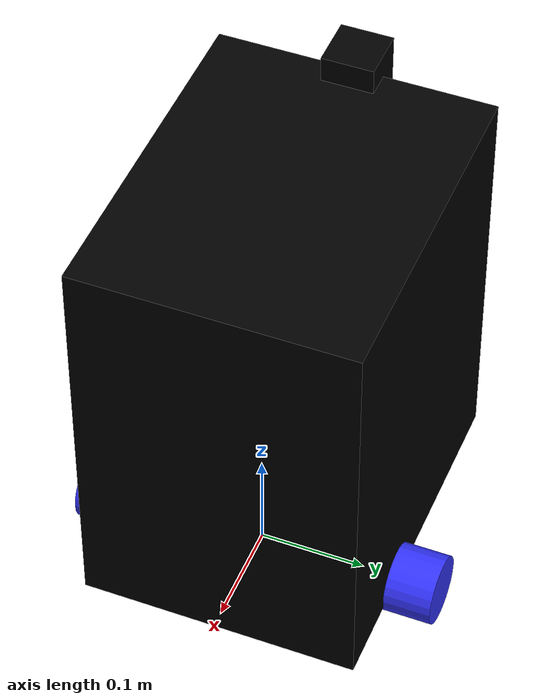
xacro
<?xml version="1.0" ?>
<robot name='robot' xmlns:xacro="http://ros.org/wiki/xacro">

    <xacro:include filename="$(find robot_bringup)/urdf/gazebo.urdf.xacro" />
    <!--xacro:include filename="$(find robot_description)/urdf/lidar.urdf.xacro" /-->
    <!--xacro:include filename="$(find robot_description)/urdf/depth.urdf.xacro" /-->

    <xacro:property name="chassis_length" value="0.335"/>
    <xacro:property name="chassis_width" value="0.265"/>
    <xacro:property name="chassis_height" value="0.138"/>
    <xacro:property name="chassis_height" value="0.4"/>
    <xacro:property name="wheel_radius" value="0.033"/>
    <xacro:property name="wheel_thickness" value="0.058"/>
    <xacro:property name="wheel_mass" value="0.05"/>
    <xacro:property name="wheel_offset_x" value="0.226"/>
    <xacro:property name="wheel_offset_x" value="0.226"/>
    <xacro:property name="wheel_offset_y" value="0.1485"/>
    <xacro:property name="wheel_offset_z" value="0.01"/>
    <xacro:property name="caster_wheel_radius" value="0.01"/>
    <xacro:property name="caster_wheel_mass" value="0.01"/>
    <xacro:property name="caster_wheel_offset_x" value="0.075"/>
    <xacro:property name="caster_wheel_offset_z" value="${wheel_offset_z - wheel_radius + caster_wheel_radius}"/>
    <xacro:property name="mass" value="1.0"/>
    <xacro:property name="cube_size" value="0.05"/>

    <material name="white">
        <color rgba="1 1 1 1" />
    </material>

    <material name="orange">
        <color rgba="1 0.3 0.1 1"/>
    </material>

    <material name="blue">
        <color rgba="0.2 0.2 1 1"/>
    </material>

    <material name="black">
        <color rgba="0 0 0 1"/>
    </material>

    <material name="red">
        <color rgba="1 0 0 1"/>
    </material>

    <material name="purple">
        <color rgba="0.5 0 0.5 1"/>
    </material>

    <!-- Основа робота -->
    <link name="base_link">
    </link>

    <link name="base_footprint">
    </link>

    <joint name="base_footprint_joint" type="fixed">
        <parent link="base_link"/>
        <child link="base_footprint"/>
        <origin xyz="0 0 -0.138" rpy="0 0 0"/>
    </joint>

    <joint name="chassis_joint" type="fixed">
        <parent link="base_link"/>
        <child link="chassis"/>
        <origin xyz="${-wheel_offset_x} 0 ${-wheel_offset_z}"/>
    </joint>

    <link name='chassis'>
        <inertial>
            <origin xyz="${chassis_length/2} 0 ${chassis_height/2}" rpy="0 0 0"/>
            <mass value="${mass}" />
            <inertia ixx="${(1/12) * mass * (chassis_width*chassis_width+chassis_height*chassis_height)}" ixy="0.0" ixz="0.0"
                     iyy="${(1/12) * mass * (chassis_length*chassis_length+chassis_height*chassis_height)}" iyz="0.0"
                     izz="${(1/12) * mass * (chassis_length*chassis_length+chassis_width*chassis_width)}" />
        </inertial>
        <visual>
            <origin xyz="${chassis_length/2} 0 ${chassis_height/2}"/>
            <geometry>
                <box size="${chassis_length} ${chassis_width} ${chassis_height}"/>
            </geometry>
            <material name="black"/>
        </visual>
        <collision>
            <origin xyz="${chassis_length/2} 0 ${chassis_height/2}"/>
            <geometry>
                <box size="${chassis_length} ${chassis_width} ${chassis_height}"/>
            </geometry>
        </collision>
    </link>

    <gazebo reference="chassis">
        <material>Gazebo/Black</material>
    </gazebo>

    <link name="top_cube">
        <visual>
            <!-- Высота установлена так, чтобы кубик находился на шасси -->
            <origin xyz="0 0 ${chassis_height / 2}"/>
            <geometry>
                <box size="${cube_size} ${cube_size} ${cube_size}"/>
            </geometry>
            <material name="black"/>
        </visual>
        <collision>
            <origin xyz="0 0 ${chassis_height / 2}"/>
            <geometry>
                <box size="${cube_size} ${cube_size} ${cube_size}"/>
            </geometry>
        </collision>
        <inertial>
            <origin xyz="0 0 ${chassis_height / 2}"/>
            <mass value="0.1"/>
            <inertia ixx="0.0001" ixy="0" ixz="0" iyy="0.0001" iyz="0" izz="0.0001"/>
        </inertial>
    </link>

    <joint name="top_cube_joint" type="fixed">
        <parent link="chassis"/>
        <child link="top_cube"/>
        <origin xyz="0 0 ${chassis_height / 2}"/>
    </joint>

    <!-- Левое колесо -->
    <joint name="left_wheel_joint" type="continuous">
        <parent link="base_link"/>
        <child link="left_wheel"/>
        <origin xyz="0 ${wheel_offset_y} 0" rpy="-${pi/2} 0 0" />
        <axis xyz="0 0 1"/>
    </joint>

    <link name="left_wheel">
        <visual>
            <geometry>
                <cylinder radius="${wheel_radius}" length="${wheel_thickness}"/>
            </geometry>
            <material name="blue"/>
        </visual>
        <collision>
            <geometry>
                <sphere radius="${wheel_radius}"/>
            </geometry>
        </collision>
        <inertial>
            <origin xyz="0 0 0" rpy="0 0 0"/>
            <mass value="${wheel_mass}" />
            <inertia ixx="${(1/12) * wheel_mass * (3*wheel_radius*wheel_radius + wheel_thickness*wheel_thickness)}" ixy="0.0" ixz="0.0"
                     iyy="${(1/12) * wheel_mass * (3*wheel_radius*wheel_radius + wheel_thickness*wheel_thickness)}" iyz="0.0"
                     izz="${(1/2) * wheel_mass * (wheel_radius*wheel_radius)}" />
        </inertial>
    </link>

    <gazebo reference="left_wheel">
        <material>Gazebo/Blue</material>
    </gazebo>

    <!-- Правое колесо -->
    <joint name="right_wheel_joint" type="continuous">
        <parent link="base_link"/>
        <child link="right_wheel"/>
        <origin xyz="0 ${-wheel_offset_y} 0" rpy="${pi/2} 0 0" />
        <axis xyz="0 0 -1"/>
    </joint>

    <link name="right_wheel">
        <visual>
            <geometry>
                <cylinder radius="${wheel_radius}" length="${wheel_thickness}"/>
            </geometry>
            <material name="blue"/>
        </visual>
        <collision>
            <geometry>
                <sphere radius="${wheel_radius}"/>
            </geometry>
        </collision>
        <inertial>
            <origin xyz="0 0 0" rpy="0 0 0"/>
            <mass value="${wheel_mass}" />
            <inertia ixx="${(1/12) * wheel_mass * (3*wheel_radius*wheel_radius + wheel_thickness*wheel_thickness)}" ixy="0.0" ixz="0.0"
                     iyy="${(1/12) * wheel_mass * (3*wheel_radius*wheel_radius + wheel_thickness*wheel_thickness)}" iyz="0.0"
                     izz="${(1/2) * wheel_mass * (wheel_radius*wheel_radius)}" />
        </inertial>
    </link>

    <gazebo reference="right_wheel">
        <material>Gazebo/Blue</material>
    </gazebo>

    <!-- Опорное колесо -->
    <joint name="caster_wheel_joint" type="fixed">
        <parent link="chassis"/>
        <child link="caster_wheel"/>
        <!--origin xyz="${caster_wheel_offset_x} 0 ${caster_wheel_offset_z}" /-->
        <origin xyz="0.075 0 ${wheel_offset_z - wheel_radius + caster_wheel_radius}"/>
    </joint>

    <link name="caster_wheel">
        <visual>
            <geometry>
                <sphere radius="${caster_wheel_radius}"/>
            </geometry>
            <material name="black"/>
        </visual>
        <collision>
            <geometry>
                <sphere radius="${caster_wheel_radius}"/>
            </geometry>
        </collision>
        <inertial>
            <origin xyz="0 0 0" rpy="0 0 0"/>
            <mass value="${caster_wheel_mass}" />
        </inertial>
    </link>

</robot>
